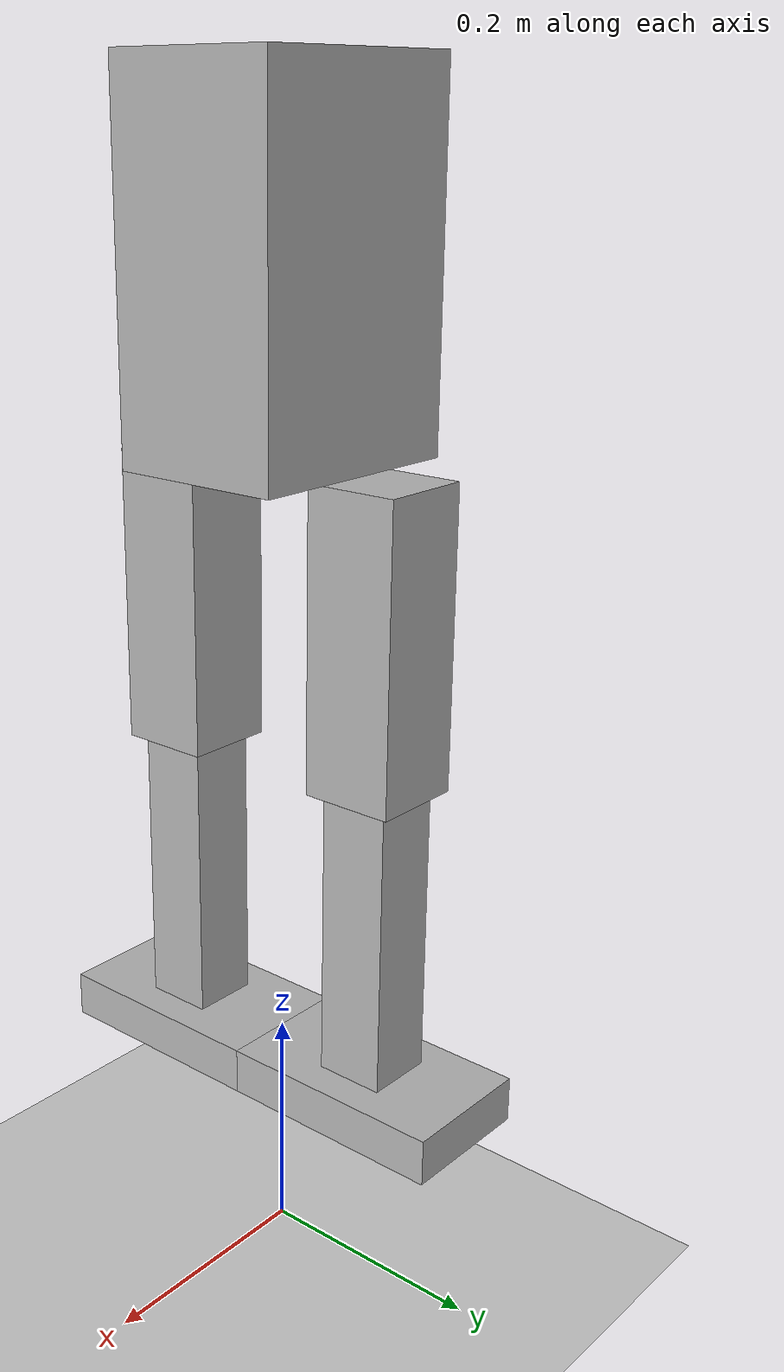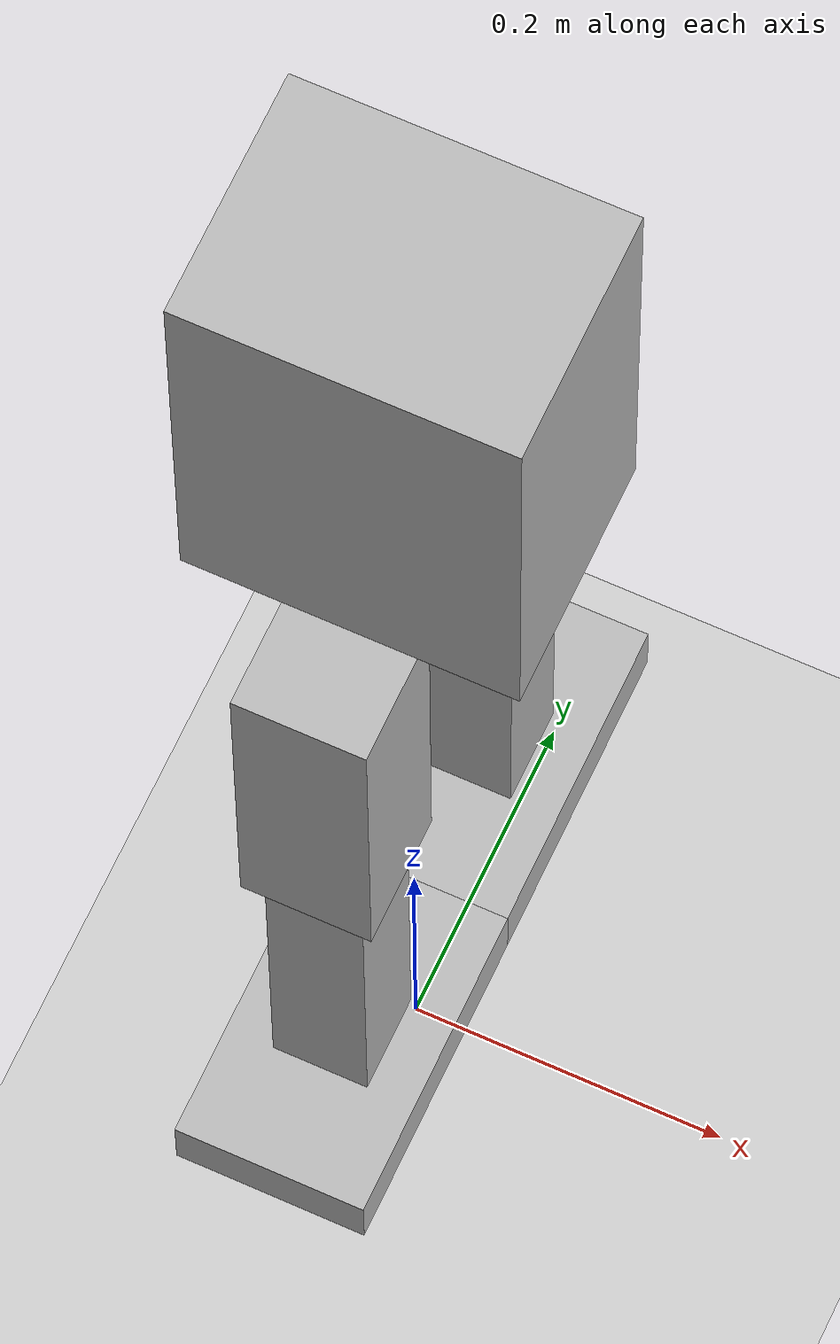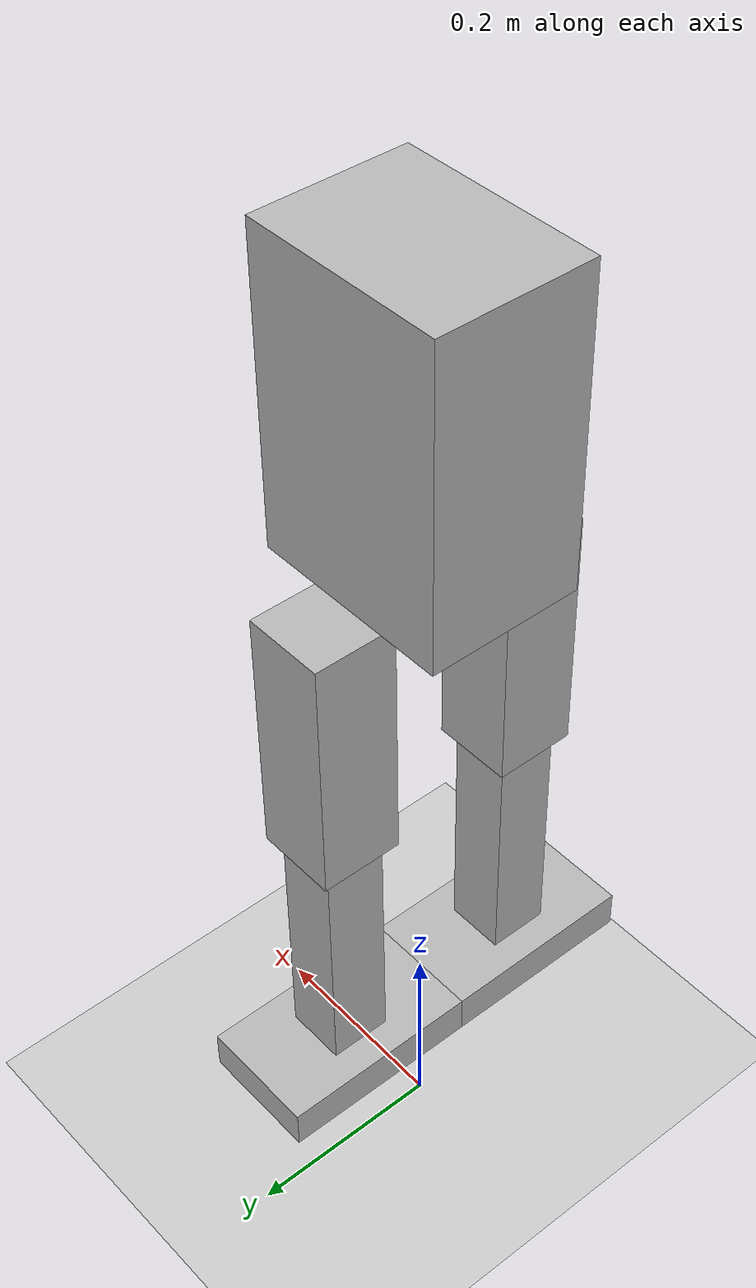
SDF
<?xml version="1.0" ?>
<sdf version="1.10">
<world name="biped_world">
  <gravity>0 0 -9.8</gravity>
  <physics name="1ms" type="ignored">
    <max_step_size>0.001</max_step_size>
    <real_time_factor>1.0</real_time_factor>
  </physics>
  <plugin filename="gz-sim-physics-system"       name="gz::sim::systems::Physics"/>
  <plugin filename="gz-sim-user-commands-system"  name="gz::sim::systems::UserCommands"/>
  <plugin filename="gz-sim-scene-broadcaster-system" name="gz::sim::systems::SceneBroadcaster"/>
  <plugin filename="gz-sim-sensors-system" name="gz::sim::systems::Sensors">
    <render_engine>ogre</render_engine>
  </plugin>
  <plugin filename="gz-sim-imu-system" name="gz::sim::systems::Imu"/>
  <light type="directional" name="sun">
    <cast_shadows>true</cast_shadows>
    <pose>0 0 10 0 0 0</pose>
    <direction>-0.5 0.1 -0.9</direction>
  </light>

  <model name="ground_plane">
    <static>true</static>
    <link name="link">
      <collision name="collision">
        <geometry>
          <plane><normal>0 0 1</normal><size>1000 1000</size></plane>
        </geometry>
      </collision>
      <visual name="visual">
        <geometry>
          <plane><normal>0 0 1</normal><size>100 100</size></plane>
        </geometry>
        <material>
          <ambient>0.8 0.8 0.8 1</ambient>
          <diffuse>0.8 0.8 0.8 1</diffuse>
        </material>
      </visual>
    </link>
    <plugin filename="gz-sim-joint-state-publisher-system"
        name="gz::sim::systems::JointStatePublisher"/>
  </model>

  <include>
    <uri>model://ardubiped</uri>
    <pose>0 0 0.85 0 0 0</pose>
  </include>

</world>
</sdf>

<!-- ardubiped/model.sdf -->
<sdf version="1.10">
  <model name="ardubiped_V3">
    <pose>0 0 0.75 0 0 0</pose>

    <link name="torso">
      <pose>0 0 0 0 0 0</pose>
      <inertial>
        <mass>2.0</mass>
        <inertia>
          <ixx>0.0187</ixx><ixy>0.0</ixy><ixz>0.0</ixz>
          <iyy>0.0217</iyy><iyz>0.0</iyz><izz>0.0104</izz>
        </inertia>
      </inertial>
      <collision name="torso_collision"><geometry><box><size>0.20 0.15 0.30</size></box></geometry></collision>
      <visual name="torso_visual"><geometry><box><size>0.20 0.15 0.30</size></box></geometry></visual>
      <sensor name="torso_imu" type="imu">
        <always_on>1</always_on>
        <update_rate>250</update_rate>
        <imu/>
      </sensor>
    </link>

    <link name="right_hip_dummy">
      <pose relative_to="torso">0 0.10 -0.15 0 0 0</pose>
      <inertial><mass>0.1</mass><inertia><ixx>0.0001</ixx><ixy>0</ixy><ixz>0</ixz><iyy>0.0001</iyy><iyz>0</iyz><izz>0.0001</izz></inertia></inertial>
    </link>

    <link name="left_hip_dummy">
      <pose relative_to="torso">0 -0.10 -0.15 0 0 0</pose>
      <inertial><mass>0.1</mass><inertia><ixx>0.0001</ixx><ixy>0</ixy><ixz>0</ixz><iyy>0.0001</iyy><iyz>0</iyz><izz>0.0001</izz></inertia></inertial>
    </link>

    <link name="right_thigh">
      <pose relative_to="right_hip_dummy">0 0 -0.125 0 0 0</pose>
      <inertial><mass>1.0</mass><inertia><ixx>0.0057</ixx><ixy>0.0</ixy><ixz>0.0</ixz><iyy>0.0057</iyy><iyz>0.0</iyz><izz>0.0011</izz></inertia></inertial>
      <collision name="right_thigh_collision"><geometry><box><size>0.08 0.08 0.25</size></box></geometry></collision>
      <visual name="right_thigh_visual"><geometry><box><size>0.08 0.08 0.25</size></box></geometry></visual>
    </link>

    <link name="left_thigh">
      <pose relative_to="left_hip_dummy">0 0 -0.125 0 0 0</pose>
      <inertial><mass>1.0</mass><inertia><ixx>0.0057</ixx><ixy>0.0</ixy><ixz>0.0</ixz><iyy>0.0057</iyy><iyz>0.0</iyz><izz>0.0011</izz></inertia></inertial>
      <collision name="left_thigh_collision"><geometry><box><size>0.08 0.08 0.25</size></box></geometry></collision>
      <visual name="left_thigh_visual"><geometry><box><size>0.08 0.08 0.25</size></box></geometry></visual>
    </link>

    <link name="right_shin">
      <pose relative_to="right_thigh">0 0 -0.25 0 0 0</pose>
      <inertial><mass>0.8</mass><inertia><ixx>0.0044</ixx><ixy>0.0</ixy><ixz>0.0</ixz><iyy>0.0044</iyy><iyz>0.0</iyz><izz>0.00048</izz></inertia></inertial>
      <collision name="right_shin_collision"><geometry><box><size>0.06 0.06 0.25</size></box></geometry></collision>
      <visual name="right_shin_visual"><geometry><box><size>0.06 0.06 0.25</size></box></geometry></visual>
    </link>

    <link name="left_shin">
      <pose relative_to="left_thigh">0 0 -0.25 0 0 0</pose>
      <inertial><mass>0.8</mass><inertia><ixx>0.0044</ixx><ixy>0.0</ixy><ixz>0.0</ixz><iyy>0.0044</iyy><iyz>0.0</iyz><izz>0.00048</izz></inertia></inertial>
      <collision name="left_shin_collision"><geometry><box><size>0.06 0.06 0.25</size></box></geometry></collision>
      <visual name="left_shin_visual"><geometry><box><size>0.06 0.06 0.25</size></box></geometry></visual>
    </link>

    <link name="right_ankle_dummy">
      <pose relative_to="right_shin">0 0 -0.125 0 0 0</pose>
      <inertial><mass>0.1</mass><inertia><ixx>0.0001</ixx><ixy>0</ixy><ixz>0</ixz><iyy>0.0001</iyy><iyz>0</iyz><izz>0.0001</izz></inertia></inertial>
    </link>

    <link name="left_ankle_dummy">
      <pose relative_to="left_shin">0 0 -0.125 0 0 0</pose>
      <inertial><mass>0.1</mass><inertia><ixx>0.0001</ixx><ixy>0</ixy><ixz>0</ixz><iyy>0.0001</iyy><iyz>0</iyz><izz>0.0001</izz></inertia></inertial>
    </link>

    <link name="right_foot">
      <pose relative_to="right_ankle_dummy">0 0 -0.02 0 0 0</pose>
      <inertial><mass>0.4</mass><inertia><ixx>0.0014</ixx><ixy>0.0</ixy><ixz>0.0</ixz><iyy>0.00053333</iyy><iyz>0.0</iyz><izz>0.0018</izz></inertia></inertial>
      <collision name="right_foot_collision"><geometry><box><size>0.12 0.20 0.04</size></box></geometry></collision>
      <visual name="right_foot_visual"><geometry><box><size>0.12 0.20 0.04</size></box></geometry></visual>
    </link>

    <link name="left_foot">
      <pose relative_to="left_ankle_dummy">0 0 -0.02 0 0 0</pose>
      <inertial><mass>0.4</mass><inertia><ixx>0.0014</ixx><ixy>0.0</ixy><ixz>0.0</ixz><iyy>0.00053333</iyy><iyz>0.0</iyz><izz>0.0018</izz></inertia></inertial>
      <collision name="left_foot_collision"><geometry><box><size>0.12 0.20 0.04</size></box></geometry></collision>
      <visual name="left_foot_visual"><geometry><box><size>0.12 0.20 0.04</size></box></geometry></visual>
    </link>

    <joint name="right_hip_roll" type="revolute">
      <pose relative_to="right_hip_dummy">0 0 0 0 0 0</pose>
      <parent>torso</parent><child>right_hip_dummy</child>
      <axis><xyz>1 0 0</xyz>
        <limit><lower>-1.57</lower><upper>1.57</upper><effort>50</effort><velocity>1.0</velocity></limit>
        <dynamics><damping>5.0</damping></dynamics>
      </axis>
    </joint>

    <joint name="right_hip_pitch" type="revolute">
      <pose relative_to="right_thigh">0 0 0.125 0 0 0</pose>
      <parent>right_hip_dummy</parent><child>right_thigh</child>
      <axis><xyz>0 1 0</xyz>
        <limit><lower>-1.57</lower><upper>1.57</upper><effort>100</effort><velocity>1.0</velocity></limit>
        <dynamics><damping>5.0</damping></dynamics>
      </axis>
    </joint>

    <joint name="right_knee_pitch" type="revolute">
      <pose relative_to="right_shin">0 0 0.125 0 0 0</pose>
      <parent>right_thigh</parent><child>right_shin</child>
      <axis><xyz>0 1 0</xyz>
        <limit><lower>-1.57</lower><upper>0.0</upper><effort>100</effort><velocity>1.0</velocity></limit>
        <dynamics><damping>5.0</damping></dynamics>
      </axis>
    </joint>

    <joint name="right_ankle_roll" type="revolute">
      <pose relative_to="right_ankle_dummy">0 0 0 0 0 0</pose>
      <parent>right_shin</parent><child>right_ankle_dummy</child>
      <axis><xyz>1 0 0</xyz>
        <limit><lower>-0.78</lower><upper>0.78</upper><effort>100</effort><velocity>1.0</velocity></limit>
        <dynamics><damping>5.0</damping></dynamics>
      </axis>
    </joint>

    <joint name="right_ankle_pitch" type="revolute">
      <pose relative_to="right_foot">0 0 0.02 0 0 0</pose>
      <parent>right_ankle_dummy</parent><child>right_foot</child>
      <axis><xyz>0 1 0</xyz>
        <limit><lower>-0.78</lower><upper>0.78</upper><effort>100</effort><velocity>1.0</velocity></limit>
        <dynamics><damping>5.0</damping></dynamics>
      </axis>
    </joint>

    <joint name="left_hip_roll" type="revolute">
      <pose relative_to="left_hip_dummy">0 0 0 0 0 0</pose>
      <parent>torso</parent><child>left_hip_dummy</child>
      <axis><xyz>1 0 0</xyz>
        <limit><lower>-1.57</lower><upper>1.57</upper><effort>50</effort><velocity>1.0</velocity></limit>
        <dynamics><damping>5.0</damping></dynamics>
      </axis>
    </joint>

    <joint name="left_hip_pitch" type="revolute">
      <pose relative_to="left_thigh">0 0 0.125 0 0 0</pose>
      <parent>left_hip_dummy</parent><child>left_thigh</child>
      <axis><xyz>0 1 0</xyz>
        <limit><lower>-1.57</lower><upper>1.57</upper><effort>100</effort><velocity>1.0</velocity></limit>
        <dynamics><damping>5.0</damping></dynamics>
      </axis>
    </joint>

    <joint name="left_knee_pitch" type="revolute">
      <pose relative_to="left_shin">0 0 0.125 0 0 0</pose>
      <parent>left_thigh</parent><child>left_shin</child>
      <axis><xyz>0 1 0</xyz>
        <limit><lower>-1.57</lower><upper>0.0</upper><effort>100</effort><velocity>1.0</velocity></limit>
        <dynamics><damping>5.0</damping></dynamics>
      </axis>
    </joint>

    <joint name="left_ankle_roll" type="revolute">
      <pose relative_to="left_ankle_dummy">0 0 0 0 0 0</pose>
      <parent>left_shin</parent><child>left_ankle_dummy</child>
      <axis><xyz>1 0 0</xyz>
        <limit><lower>-0.78</lower><upper>0.78</upper><effort>100</effort><velocity>1.0</velocity></limit>
        <dynamics><damping>5.0</damping></dynamics>
      </axis>
    </joint>

    <joint name="left_ankle_pitch" type="revolute">
      <pose relative_to="left_foot">0 0 0.02 0 0 0</pose>
      <parent>left_ankle_dummy</parent><child>left_foot</child>
      <axis><xyz>0 1 0</xyz>
        <limit><lower>-0.78</lower><upper>0.78</upper><effort>100</effort><velocity>1.0</velocity></limit>
        <dynamics><damping>5.0</damping></dynamics>
      </axis>
    </joint>

    <plugin name="ArduPilotPlugin" filename="libArduPilotPlugin.so">
      <fdm_addr>127.0.0.1</fdm_addr>
      <fdm_port_in>9002</fdm_port_in>
      <fdm_port_out>9003</fdm_port_out>
      <connectionTimeoutMaxCount>500</connectionTimeoutMaxCount>
      <lock_step>1</lock_step>
      <modelName>ardubiped_V3</modelName>
      <modelXYZToAirplaneXForwardZDown>0 0 0 3.141593 0 0</modelXYZToAirplaneXForwardZDown>
      <gazeboXYZToNED>0 0 0 3.141593 0 0</gazeboXYZToNED>
      <imuName>torso_imu</imuName>
      <control channel="0"><jointName>right_hip_pitch</jointName><useForce>1</useForce><multiplier>1.0</multiplier><offset>0.0</offset><servo_min>1000</servo_min><servo_max>2000</servo_max><type>POSITION</type><p_gain>200.0</p_gain><i_gain>1.0</i_gain><d_gain>5.0</d_gain><i_max>0</i_max><i_min>0</i_min><cmd_max>100.0</cmd_max><cmd_min>-100.0</cmd_min></control>
      <control channel="1"><jointName>right_hip_roll</jointName><useForce>1</useForce><multiplier>1.0</multiplier><offset>0.0</offset><servo_min>1000</servo_min><servo_max>2000</servo_max><type>POSITION</type><p_gain>50.0</p_gain><i_gain>0.0</i_gain><d_gain>1.0</d_gain><i_max>0</i_max><i_min>0</i_min><cmd_max>20.0</cmd_max><cmd_min>-20.0</cmd_min></control>
      <control channel="2"><jointName>right_knee_pitch</jointName><useForce>1</useForce><multiplier>-1.0</multiplier><offset>0.0</offset><servo_min>1000</servo_min><servo_max>2000</servo_max><type>POSITION</type><p_gain>200.0</p_gain><i_gain>0.0</i_gain><d_gain>5.0</d_gain><i_max>0</i_max><i_min>0</i_min><cmd_max>100.0</cmd_max><cmd_min>-100.0</cmd_min></control>
      <control channel="3"><jointName>right_ankle_pitch</jointName><useForce>1</useForce><multiplier>1.0</multiplier><offset>0.0</offset><servo_min>1000</servo_min><servo_max>2000</servo_max><type>POSITION</type><p_gain>100.0</p_gain><i_gain>0.0</i_gain><d_gain>2.0</d_gain><i_max>0</i_max><i_min>0</i_min><cmd_max>50.0</cmd_max><cmd_min>-50.0</cmd_min></control>
      <control channel="4"><jointName>right_ankle_roll</jointName><useForce>1</useForce><multiplier>1.0</multiplier><offset>0.0</offset><servo_min>1000</servo_min><servo_max>2000</servo_max><type>POSITION</type><p_gain>50.0</p_gain><i_gain>0.0</i_gain><d_gain>1.0</d_gain><i_max>0</i_max><i_min>0</i_min><cmd_max>20.0</cmd_max><cmd_min>-20.0</cmd_min></control>
      <control channel="5"><jointName>left_hip_pitch</jointName><useForce>1</useForce><multiplier>1.0</multiplier><offset>0.0</offset><servo_min>1000</servo_min><servo_max>2000</servo_max><type>POSITION</type><p_gain>200.0</p_gain><i_gain>1.0</i_gain><d_gain>5.0</d_gain><i_max>0</i_max><i_min>0</i_min><cmd_max>100.0</cmd_max><cmd_min>-100.0</cmd_min></control>
      <control channel="6"><jointName>left_hip_roll</jointName><useForce>1</useForce><multiplier>1.0</multiplier><offset>0.0</offset><servo_min>1000</servo_min><servo_max>2000</servo_max><type>POSITION</type><p_gain>50.0</p_gain><i_gain>0.0</i_gain><d_gain>1.0</d_gain><i_max>0</i_max><i_min>0</i_min><cmd_max>20.0</cmd_max><cmd_min>-20.0</cmd_min></control>
      <control channel="7"><jointName>left_knee_pitch</jointName><useForce>1</useForce><multiplier>-1.0</multiplier><offset>0.0</offset><servo_min>1000</servo_min><servo_max>2000</servo_max><type>POSITION</type><p_gain>200.0</p_gain><i_gain>0.0</i_gain><d_gain>5.0</d_gain><i_max>0</i_max><i_min>0</i_min><cmd_max>100.0</cmd_max><cmd_min>-100.0</cmd_min></control>
      <control channel="8"><jointName>left_ankle_pitch</jointName><useForce>1</useForce><multiplier>1.0</multiplier><offset>0.0</offset><servo_min>1000</servo_min><servo_max>2000</servo_max><type>POSITION</type><p_gain>100.0</p_gain><i_gain>0.0</i_gain><d_gain>2.0</d_gain><i_max>0</i_max><i_min>0</i_min><cmd_max>50.0</cmd_max><cmd_min>-50.0</cmd_min></control>
      <control channel="9"><jointName>left_ankle_roll</jointName><useForce>1</useForce><multiplier>1.0</multiplier><offset>0.0</offset><servo_min>1000</servo_min><servo_max>2000</servo_max><type>POSITION</type><p_gain>50.0</p_gain><i_gain>0.0</i_gain><d_gain>1.0</d_gain><i_max>0</i_max><i_min>0</i_min><cmd_max>20.0</cmd_max><cmd_min>-20.0</cmd_min></control>
    </plugin>

    <plugin filename="gz-sim-joint-state-publisher-system"
        name="gz::sim::systems::JointStatePublisher"/>

    <plugin filename="gz-sim-joint-position-controller-system"
        name="gz::sim::systems::JointPositionController">
      <joint_name>right_hip_pitch</joint_name>
      <topic>/right_hip_pitch/cmd</topic>
      <p_gain>200</p_gain><i_gain>1.0</i_gain><d_gain>5.0</d_gain>
    </plugin>

    <plugin filename="gz-sim-joint-position-controller-system"
        name="gz::sim::systems::JointPositionController">
      <joint_name>left_hip_pitch</joint_name>
      <topic>/left_hip_pitch/cmd</topic>
      <p_gain>200</p_gain><i_gain>1.0</i_gain><d_gain>5.0</d_gain>
    </plugin>

    <plugin filename="gz-sim-joint-position-controller-system"
        name="gz::sim::systems::JointPositionController">
      <joint_name>right_knee_pitch</joint_name>
      <topic>/right_knee_pitch/cmd</topic>
      <p_gain>200</p_gain><i_gain>0.0</i_gain><d_gain>5.0</d_gain>
    </plugin>

    <plugin filename="gz-sim-joint-position-controller-system"
        name="gz::sim::systems::JointPositionController">
      <joint_name>left_knee_pitch</joint_name>
      <topic>/left_knee_pitch/cmd</topic>
      <p_gain>200</p_gain><i_gain>0.0</i_gain><d_gain>5.0</d_gain>
    </plugin>

    <plugin filename="gz-sim-joint-position-controller-system"
        name="gz::sim::systems::JointPositionController">
      <joint_name>right_ankle_pitch</joint_name>
      <topic>/right_ankle_pitch/cmd</topic>
      <p_gain>100</p_gain><i_gain>0.0</i_gain><d_gain>2.0</d_gain>
    </plugin>

    <plugin filename="gz-sim-joint-position-controller-system"
        name="gz::sim::systems::JointPositionController">
      <joint_name>left_ankle_pitch</joint_name>
      <topic>/left_ankle_pitch/cmd</topic>
      <p_gain>100</p_gain><i_gain>0.0</i_gain><d_gain>2.0</d_gain>
    </plugin>

    <plugin filename="gz-sim-joint-position-controller-system"
        name="gz::sim::systems::JointPositionController">
      <joint_name>right_hip_roll</joint_name>
      <topic>/right_hip_roll/cmd</topic>
      <p_gain>50</p_gain><i_gain>0.0</i_gain><d_gain>1.0</d_gain>
    </plugin>

    <plugin filename="gz-sim-joint-position-controller-system"
        name="gz::sim::systems::JointPositionController">
      <joint_name>left_hip_roll</joint_name>
      <topic>/left_hip_roll/cmd</topic>
      <p_gain>50</p_gain><i_gain>0.0</i_gain><d_gain>1.0</d_gain>
    </plugin>

    <plugin filename="gz-sim-joint-position-controller-system"
        name="gz::sim::systems::JointPositionController">
      <joint_name>right_ankle_roll</joint_name>
      <topic>/right_ankle_roll/cmd</topic>
      <p_gain>50</p_gain><i_gain>0.0</i_gain><d_gain>1.0</d_gain>
    </plugin>

    <plugin filename="gz-sim-joint-position-controller-system"
        name="gz::sim::systems::JointPositionController">
      <joint_name>left_ankle_roll</joint_name>
      <topic>/left_ankle_roll/cmd</topic>
      <p_gain>50</p_gain><i_gain>0.0</i_gain><d_gain>1.0</d_gain>
    </plugin>

  </model>
</sdf>
